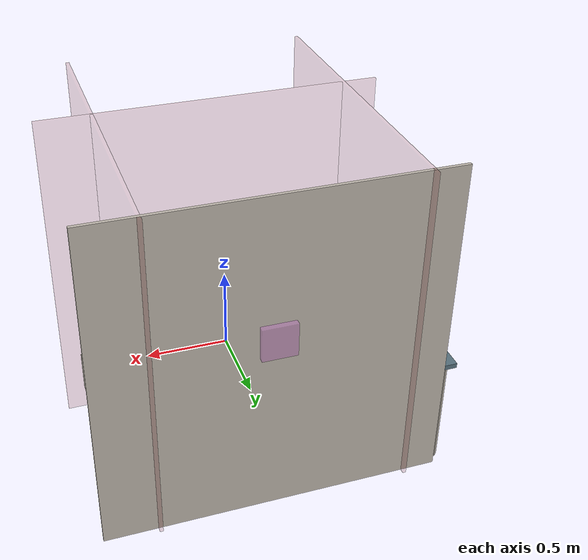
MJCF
<mujoco model="computer_rack_scene">
    <compiler angle="radian" meshdir="meshes/" inertiafromgeom="true"/>
    <default>
        <default class="visual">
            <geom contype="0" conaffinity="0" group="2"/>
        </default>
    </default>
    <include file="materials.xml"/>
    <include file="cc_sphere.xml"/>
    <include file="real_obs.xml"/>
    <worldbody>
        <light name="top" pos="0 -1 15" mode="trackcom"/>
    </worldbody>
</mujoco>

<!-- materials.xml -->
<mujocoinclude>
    <asset>
        <texture file="textures/light-wood.png" type="2d" name="tex-light-wood"/>
        <texture file="textures/dark-wood.png" type="2d" name="tex-dark-wood"/>
        <texture file="textures/metal.png" type="2d" name="tex-metal"/>
        <texture file="textures/cream-plaster.png" type="2d" name="tex-cream-plaster"/>
        <texture file="textures/grass.png" type="2d" name="tex-grass"/>
        <material name="light-wood" reflectance="0" texrepeat="15 15" texture="tex-light-wood" texuniform="true"/>
        <material name="dark-wood" reflectance="0" texrepeat="5 5" texture="tex-dark-wood" texuniform="true"/>
        <material name="metal" reflectance="0" texrepeat="5 5" texture="tex-metal" texuniform="true"/>
        <material name="cream-plaster" reflectance="0" texrepeat="5 5" texture="tex-cream-plaster" texuniform="true"/>
        <material name="grass" reflectance="0" texrepeat="0.2 0.2" texture="tex-grass" texuniform="true"/>
    </asset>
</mujocoinclude>

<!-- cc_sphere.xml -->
<mujoco model="cc_sphere">
    <worldbody>
        <body pos="0 0 0" name="cc_sphere">
            <!-- To get the most precise results, the size here should be half of the resolution of the voxelgrid -->
            <geom type="sphere" name="cc_sphere" size="0.005" rgba="1 1 1 0.1"/>
            <joint type="free" name="cc_sphere" damping="0.1"/>
        </body>
    </worldbody>
</mujoco>

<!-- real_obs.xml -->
<mujoco model="real_obs">
    <worldbody>
        <body name="obstacles" pos="0 0 -0.445">
            <body name="walls">
                <body name="front_wall" pos="0 0.96 1">
                    <geom name="front_wall" type="box" size="1 0.01 1" material="cream-plaster"/>
                    <body name="outlet_bar" pos="0 -0.025 0.155">
                        <geom name="outlet_bar" type="box" pos="0 0 0" size="1 0.025 0.1" material="metal"/>
                        <body name="goal" pos="0 -0.03 0">
                            <geom name="goal" class="visual" type="box" size="0.1 0.1 0.1" rgba="0.8 0.5 0.8 0.5"/>
                        </body>
                    </body>
                    <body name="tv" pos="0 -0.05 0.64">
                        <geom name="tv" type="box" pos="0 0 0" size="0.6 0.05 0.3" rgba="0 0 0 1"/>
                    </body>
                    <body name="attach" pos="0.6 -0.01 0.17">
                        <geom name="attach" type="box" size="0.02 0.005 0.02" rgba="0.5 0 0 1"/>
                    </body>
                </body>
                <geom name="left_wall" type="box" pos="0.68 0 1" size="0.01 1 1" rgba="0.5 0.1 0.1 0.1"/>
                <geom name="right_wall" type="box" pos="-0.8 0 1" size="0.01 1 1" rgba="0.5 0.1 0.1 0.1"/>
                <geom name="back_wall" type="box" pos="0.0 -0.2 1" size="1 0.01 1" rgba="0.5 0.1 0.1 0.1"/>
            </body>
            <body name="table" pos="-0.25 0.71 0">
                <geom name="top" type="box" pos="0 0 0.7" size="0.8375 0.24 0.015" rgba="0.35 0.45 0.5 1.0"/>
                <geom name="leg1" type="box" pos="0.76 0.17 0.35" euler="0 0 0.785" size="0.05 0.0175 0.35"
                      material="metal"/>
                <geom name="leg2" type="box" pos="-0.76 0.17 0.35" euler="0 0 -0.785" size="0.05 0.0175 0.35"
                      material="metal"/>
                <geom name="leg3" type="box" pos="-0.76 -0.17 0.35" euler="0 0 0.785" size="0.05 0.0175 0.35"
                      material="metal"/>
                <geom name="leg4" type="box" pos="0.76 -0.17 0.35" euler="0 0 -0.785" size="0.05 0.0175 0.35"
                      material="metal"/>
            </body>
        </body>
    </worldbody>
</mujoco>
